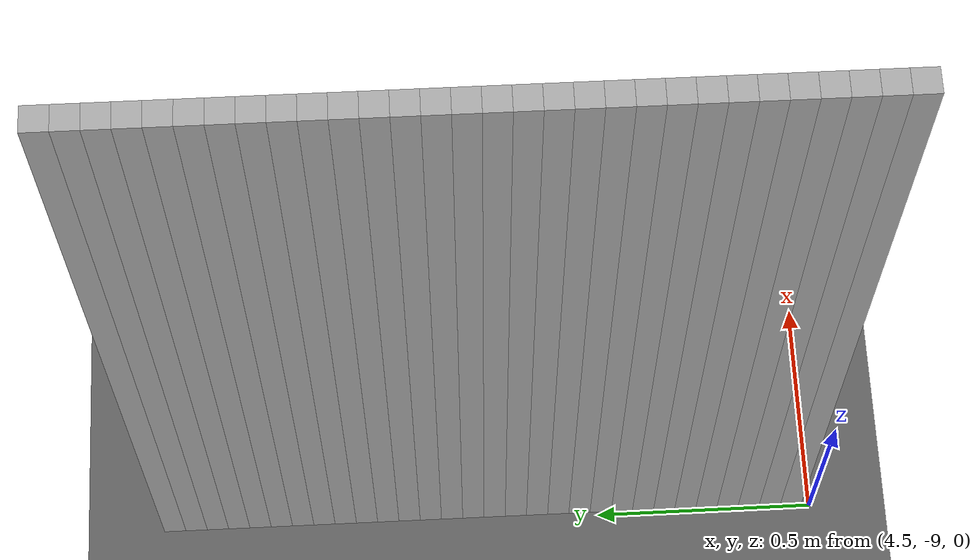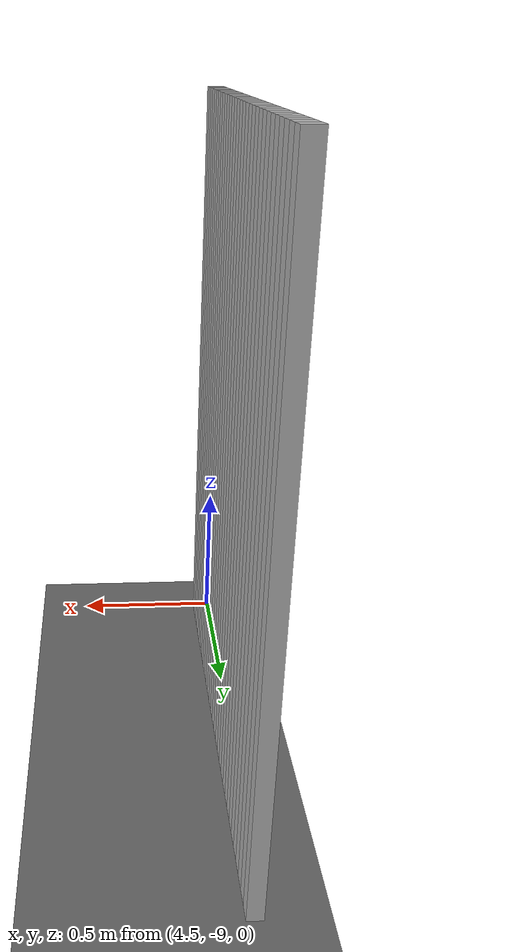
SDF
<sdf version="1.8">
 <world name="real_map">
  <model name="ground">
   <static>true</static>
   <link name="l">
    <collision name="c"><geometry><plane><normal>0 0 1</normal><size>100 100</size></plane></geometry></collision>
    <visual name="v">
     <geometry><plane><normal>0 0 1</normal><size>100 100</size></plane></geometry>
     <material><ambient>0.3 0.3 0.3 1</ambient><diffuse>0.4 0.4 0.4 1</diffuse></material>
    </visual>
   </link>
  </model>
  <model name="walls">
   <static>true</static>
   <link name="w1436">
    <pose>4.534 -7.508 1.000 0 0 0</pose>
    <collision name="c"><geometry><box><size>0.050 0.050 2.000</size></box></geometry></collision>
    <visual name="v">
     <geometry><box><size>0.050 0.050 2.000</size></box></geometry>
     <material><ambient>0.7 0.7 0.7 1</ambient><diffuse>0.7 0.7 0.7 1</diffuse></material>
    </visual>
   </link>
   <link name="w1438">
    <pose>4.534 -7.558 1.000 0 0 0</pose>
    <collision name="c"><geometry><box><size>0.050 0.050 2.000</size></box></geometry></collision>
    <visual name="v">
     <geometry><box><size>0.050 0.050 2.000</size></box></geometry>
     <material><ambient>0.7 0.7 0.7 1</ambient><diffuse>0.7 0.7 0.7 1</diffuse></material>
    </visual>
   </link>
   <link name="w1440">
    <pose>4.534 -7.608 1.000 0 0 0</pose>
    <collision name="c"><geometry><box><size>0.050 0.050 2.000</size></box></geometry></collision>
    <visual name="v">
     <geometry><box><size>0.050 0.050 2.000</size></box></geometry>
     <material><ambient>0.7 0.7 0.7 1</ambient><diffuse>0.7 0.7 0.7 1</diffuse></material>
    </visual>
   </link>
   <link name="w1442">
    <pose>4.534 -7.658 1.000 0 0 0</pose>
    <collision name="c"><geometry><box><size>0.050 0.050 2.000</size></box></geometry></collision>
    <visual name="v">
     <geometry><box><size>0.050 0.050 2.000</size></box></geometry>
     <material><ambient>0.7 0.7 0.7 1</ambient><diffuse>0.7 0.7 0.7 1</diffuse></material>
    </visual>
   </link>
   <link name="w1444">
    <pose>4.534 -7.708 1.000 0 0 0</pose>
    <collision name="c"><geometry><box><size>0.050 0.050 2.000</size></box></geometry></collision>
    <visual name="v">
     <geometry><box><size>0.050 0.050 2.000</size></box></geometry>
     <material><ambient>0.7 0.7 0.7 1</ambient><diffuse>0.7 0.7 0.7 1</diffuse></material>
    </visual>
   </link>
   <link name="w1446">
    <pose>4.534 -7.758 1.000 0 0 0</pose>
    <collision name="c"><geometry><box><size>0.050 0.050 2.000</size></box></geometry></collision>
    <visual name="v">
     <geometry><box><size>0.050 0.050 2.000</size></box></geometry>
     <material><ambient>0.7 0.7 0.7 1</ambient><diffuse>0.7 0.7 0.7 1</diffuse></material>
    </visual>
   </link>
   <link name="w1448">
    <pose>4.534 -7.808 1.000 0 0 0</pose>
    <collision name="c"><geometry><box><size>0.050 0.050 2.000</size></box></geometry></collision>
    <visual name="v">
     <geometry><box><size>0.050 0.050 2.000</size></box></geometry>
     <material><ambient>0.7 0.7 0.7 1</ambient><diffuse>0.7 0.7 0.7 1</diffuse></material>
    </visual>
   </link>
   <link name="w1450">
    <pose>4.534 -7.858 1.000 0 0 0</pose>
    <collision name="c"><geometry><box><size>0.050 0.050 2.000</size></box></geometry></collision>
    <visual name="v">
     <geometry><box><size>0.050 0.050 2.000</size></box></geometry>
     <material><ambient>0.7 0.7 0.7 1</ambient><diffuse>0.7 0.7 0.7 1</diffuse></material>
    </visual>
   </link>
   <link name="w1452">
    <pose>4.534 -7.908 1.000 0 0 0</pose>
    <collision name="c"><geometry><box><size>0.050 0.050 2.000</size></box></geometry></collision>
    <visual name="v">
     <geometry><box><size>0.050 0.050 2.000</size></box></geometry>
     <material><ambient>0.7 0.7 0.7 1</ambient><diffuse>0.7 0.7 0.7 1</diffuse></material>
    </visual>
   </link>
   <link name="w1454">
    <pose>4.534 -7.958 1.000 0 0 0</pose>
    <collision name="c"><geometry><box><size>0.050 0.050 2.000</size></box></geometry></collision>
    <visual name="v">
     <geometry><box><size>0.050 0.050 2.000</size></box></geometry>
     <material><ambient>0.7 0.7 0.7 1</ambient><diffuse>0.7 0.7 0.7 1</diffuse></material>
    </visual>
   </link>
   <link name="w1456">
    <pose>4.534 -8.008 1.000 0 0 0</pose>
    <collision name="c"><geometry><box><size>0.050 0.050 2.000</size></box></geometry></collision>
    <visual name="v">
     <geometry><box><size>0.050 0.050 2.000</size></box></geometry>
     <material><ambient>0.7 0.7 0.7 1</ambient><diffuse>0.7 0.7 0.7 1</diffuse></material>
    </visual>
   </link>
   <link name="w1458">
    <pose>4.534 -8.058 1.000 0 0 0</pose>
    <collision name="c"><geometry><box><size>0.050 0.050 2.000</size></box></geometry></collision>
    <visual name="v">
     <geometry><box><size>0.050 0.050 2.000</size></box></geometry>
     <material><ambient>0.7 0.7 0.7 1</ambient><diffuse>0.7 0.7 0.7 1</diffuse></material>
    </visual>
   </link>
   <link name="w1460">
    <pose>4.534 -8.108 1.000 0 0 0</pose>
    <collision name="c"><geometry><box><size>0.050 0.050 2.000</size></box></geometry></collision>
    <visual name="v">
     <geometry><box><size>0.050 0.050 2.000</size></box></geometry>
     <material><ambient>0.7 0.7 0.7 1</ambient><diffuse>0.7 0.7 0.7 1</diffuse></material>
    </visual>
   </link>
   <link name="w1462">
    <pose>4.534 -8.158 1.000 0 0 0</pose>
    <collision name="c"><geometry><box><size>0.050 0.050 2.000</size></box></geometry></collision>
    <visual name="v">
     <geometry><box><size>0.050 0.050 2.000</size></box></geometry>
     <material><ambient>0.7 0.7 0.7 1</ambient><diffuse>0.7 0.7 0.7 1</diffuse></material>
    </visual>
   </link>
   <link name="w1464">
    <pose>4.534 -8.208 1.000 0 0 0</pose>
    <collision name="c"><geometry><box><size>0.050 0.050 2.000</size></box></geometry></collision>
    <visual name="v">
     <geometry><box><size>0.050 0.050 2.000</size></box></geometry>
     <material><ambient>0.7 0.7 0.7 1</ambient><diffuse>0.7 0.7 0.7 1</diffuse></material>
    </visual>
   </link>
   <link name="w1466">
    <pose>4.534 -8.258 1.000 0 0 0</pose>
    <collision name="c"><geometry><box><size>0.050 0.050 2.000</size></box></geometry></collision>
    <visual name="v">
     <geometry><box><size>0.050 0.050 2.000</size></box></geometry>
     <material><ambient>0.7 0.7 0.7 1</ambient><diffuse>0.7 0.7 0.7 1</diffuse></material>
    </visual>
   </link>
   <link name="w1468">
    <pose>4.534 -8.308 1.000 0 0 0</pose>
    <collision name="c"><geometry><box><size>0.050 0.050 2.000</size></box></geometry></collision>
    <visual name="v">
     <geometry><box><size>0.050 0.050 2.000</size></box></geometry>
     <material><ambient>0.7 0.7 0.7 1</ambient><diffuse>0.7 0.7 0.7 1</diffuse></material>
    </visual>
   </link>
   <link name="w1470">
    <pose>4.534 -8.358 1.000 0 0 0</pose>
    <collision name="c"><geometry><box><size>0.050 0.050 2.000</size></box></geometry></collision>
    <visual name="v">
     <geometry><box><size>0.050 0.050 2.000</size></box></geometry>
     <material><ambient>0.7 0.7 0.7 1</ambient><diffuse>0.7 0.7 0.7 1</diffuse></material>
    </visual>
   </link>
   <link name="w1472">
    <pose>4.534 -8.408 1.000 0 0 0</pose>
    <collision name="c"><geometry><box><size>0.050 0.050 2.000</size></box></geometry></collision>
    <visual name="v">
     <geometry><box><size>0.050 0.050 2.000</size></box></geometry>
     <material><ambient>0.7 0.7 0.7 1</ambient><diffuse>0.7 0.7 0.7 1</diffuse></material>
    </visual>
   </link>
   <link name="w1474">
    <pose>4.534 -8.458 1.000 0 0 0</pose>
    <collision name="c"><geometry><box><size>0.050 0.050 2.000</size></box></geometry></collision>
    <visual name="v">
     <geometry><box><size>0.050 0.050 2.000</size></box></geometry>
     <material><ambient>0.7 0.7 0.7 1</ambient><diffuse>0.7 0.7 0.7 1</diffuse></material>
    </visual>
   </link>
   <link name="w1476">
    <pose>4.534 -8.508 1.000 0 0 0</pose>
    <collision name="c"><geometry><box><size>0.050 0.050 2.000</size></box></geometry></collision>
    <visual name="v">
     <geometry><box><size>0.050 0.050 2.000</size></box></geometry>
     <material><ambient>0.7 0.7 0.7 1</ambient><diffuse>0.7 0.7 0.7 1</diffuse></material>
    </visual>
   </link>
   <link name="w1478">
    <pose>4.534 -8.558 1.000 0 0 0</pose>
    <collision name="c"><geometry><box><size>0.050 0.050 2.000</size></box></geometry></collision>
    <visual name="v">
     <geometry><box><size>0.050 0.050 2.000</size></box></geometry>
     <material><ambient>0.7 0.7 0.7 1</ambient><diffuse>0.7 0.7 0.7 1</diffuse></material>
    </visual>
   </link>
   <link name="w1480">
    <pose>4.534 -8.608 1.000 0 0 0</pose>
    <collision name="c"><geometry><box><size>0.050 0.050 2.000</size></box></geometry></collision>
    <visual name="v">
     <geometry><box><size>0.050 0.050 2.000</size></box></geometry>
     <material><ambient>0.7 0.7 0.7 1</ambient><diffuse>0.7 0.7 0.7 1</diffuse></material>
    </visual>
   </link>
   <link name="w1482">
    <pose>4.534 -8.658 1.000 0 0 0</pose>
    <collision name="c"><geometry><box><size>0.050 0.050 2.000</size></box></geometry></collision>
    <visual name="v">
     <geometry><box><size>0.050 0.050 2.000</size></box></geometry>
     <material><ambient>0.7 0.7 0.7 1</ambient><diffuse>0.7 0.7 0.7 1</diffuse></material>
    </visual>
   </link>
   <link name="w1484">
    <pose>4.534 -8.708 1.000 0 0 0</pose>
    <collision name="c"><geometry><box><size>0.050 0.050 2.000</size></box></geometry></collision>
    <visual name="v">
     <geometry><box><size>0.050 0.050 2.000</size></box></geometry>
     <material><ambient>0.7 0.7 0.7 1</ambient><diffuse>0.7 0.7 0.7 1</diffuse></material>
    </visual>
   </link>
   <link name="w1486">
    <pose>4.534 -8.758 1.000 0 0 0</pose>
    <collision name="c"><geometry><box><size>0.050 0.050 2.000</size></box></geometry></collision>
    <visual name="v">
     <geometry><box><size>0.050 0.050 2.000</size></box></geometry>
     <material><ambient>0.7 0.7 0.7 1</ambient><diffuse>0.7 0.7 0.7 1</diffuse></material>
    </visual>
   </link>
   <link name="w1488">
    <pose>4.534 -8.808 1.000 0 0 0</pose>
    <collision name="c"><geometry><box><size>0.050 0.050 2.000</size></box></geometry></collision>
    <visual name="v">
     <geometry><box><size>0.050 0.050 2.000</size></box></geometry>
     <material><ambient>0.7 0.7 0.7 1</ambient><diffuse>0.7 0.7 0.7 1</diffuse></material>
    </visual>
   </link>
   <link name="w1490">
    <pose>4.534 -8.858 1.000 0 0 0</pose>
    <collision name="c"><geometry><box><size>0.050 0.050 2.000</size></box></geometry></collision>
    <visual name="v">
     <geometry><box><size>0.050 0.050 2.000</size></box></geometry>
     <material><ambient>0.7 0.7 0.7 1</ambient><diffuse>0.7 0.7 0.7 1</diffuse></material>
    </visual>
   </link>
   <link name="w1492">
    <pose>4.534 -8.908 1.000 0 0 0</pose>
    <collision name="c"><geometry><box><size>0.050 0.050 2.000</size></box></geometry></collision>
    <visual name="v">
     <geometry><box><size>0.050 0.050 2.000</size></box></geometry>
     <material><ambient>0.7 0.7 0.7 1</ambient><diffuse>0.7 0.7 0.7 1</diffuse></material>
    </visual>
   </link>
   <link name="w1494">
    <pose>4.534 -8.958 1.000 0 0 0</pose>
    <collision name="c"><geometry><box><size>0.050 0.050 2.000</size></box></geometry></collision>
    <visual name="v">
     <geometry><box><size>0.050 0.050 2.000</size></box></geometry>
     <material><ambient>0.7 0.7 0.7 1</ambient><diffuse>0.7 0.7 0.7 1</diffuse></material>
    </visual>
   </link>
  </model>
 </world>
</sdf>
